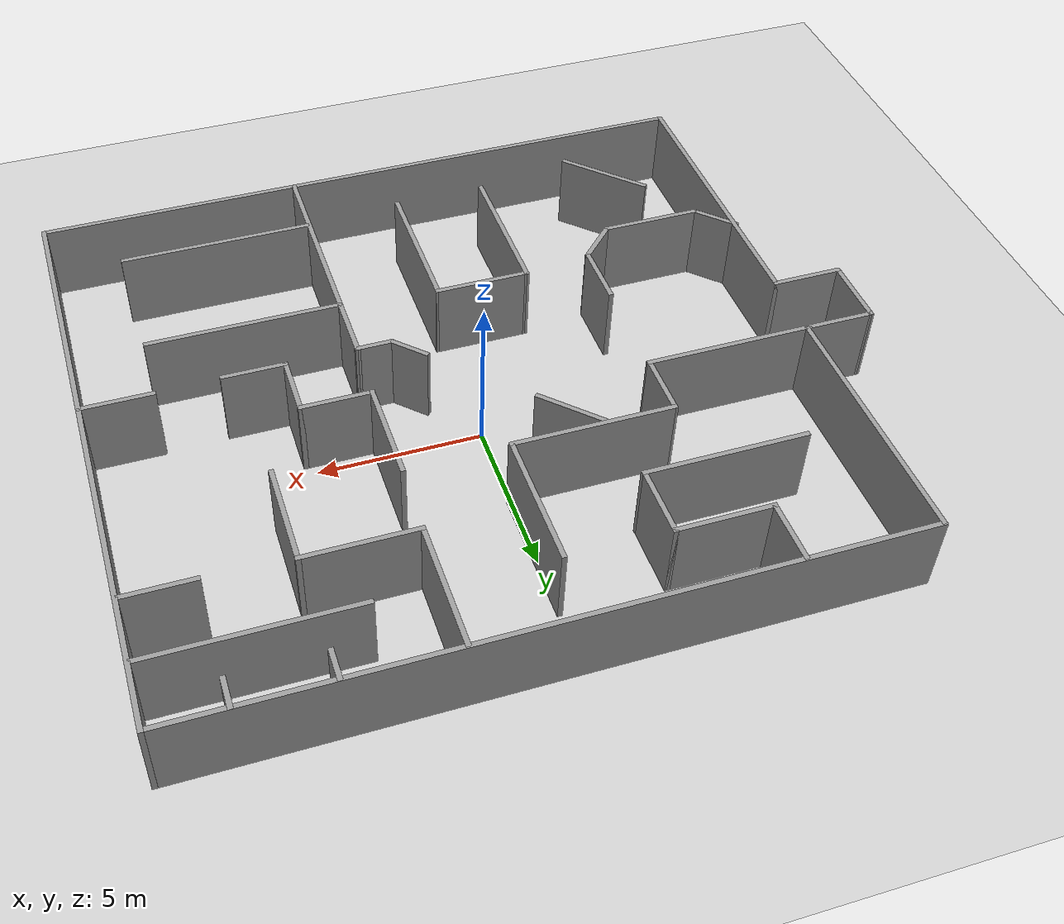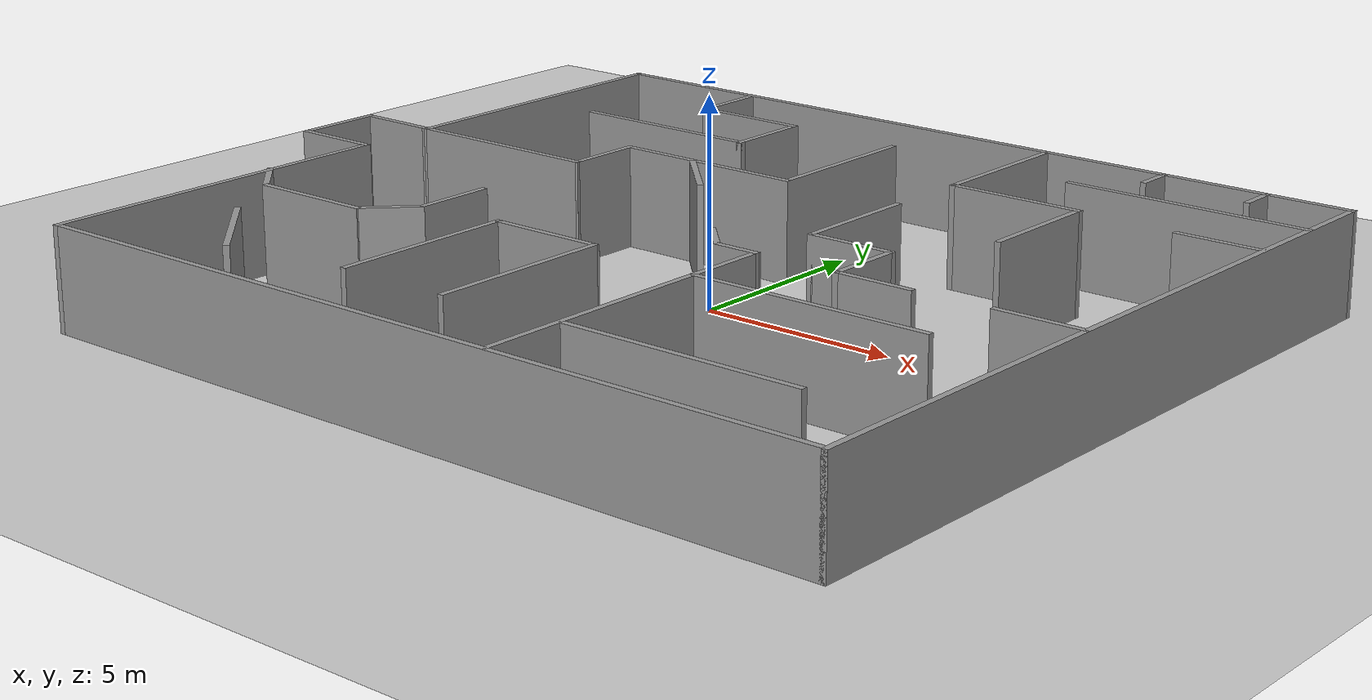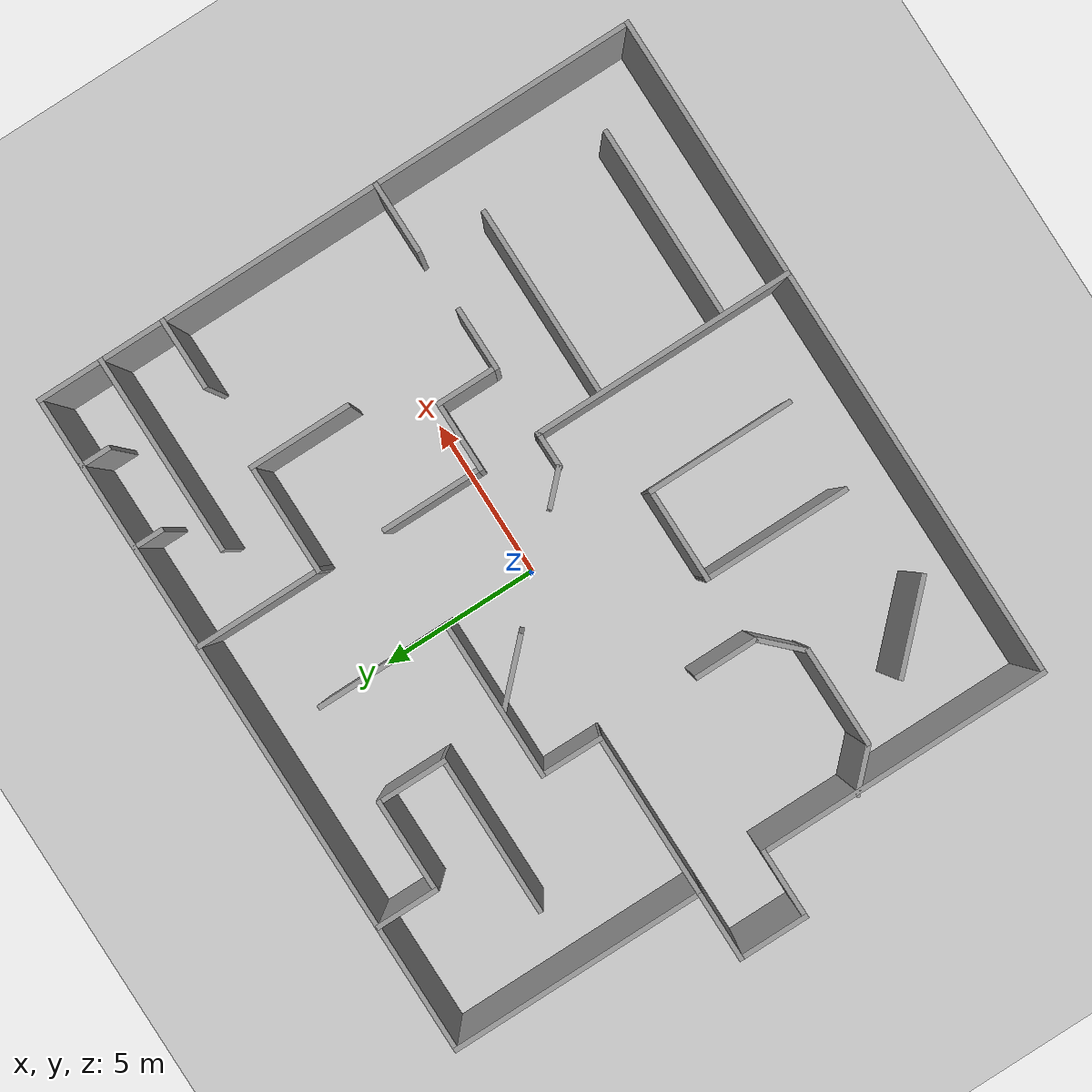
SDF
<sdf version="1.7">
 <world name="default">
  <model name="ground_plane">
   <static>1</static>
   <link name="link">
    <collision name="collision">
     <geometry><plane><normal>0 0 1</normal><size>100 100</size></plane></geometry>
     <surface>
      <contact><collide_bitmask>65535</collide_bitmask></contact>
      <friction><ode><mu>100</mu><mu2>50</mu2></ode></friction>
     </surface>
    </collision>
    <visual name="visual">
     <cast_shadows>0</cast_shadows>
     <geometry><plane><normal>0 0 1</normal><size>100 100</size></plane></geometry>
     <material>
      <script><uri>file://media/materials/scripts/gazebo.material</uri><name>Gazebo/Grey</name></script>
     </material>
    </visual>
   </link>
  </model>
  <model name="Maze_2">
   <pose>-0.343797 -0.781152 -0 0 -0 0</pose>
   <link name="Wall_1">
    <collision name="Wall_1_Collision">
     <geometry><box><size>2.18537 0.15 2.5</size></box></geometry>
     <pose>0 0 1.25 0 -0 0</pose>
    </collision>
    <visual name="Wall_1_Visual">
     <pose>0 0 1.25 0 -0 0</pose>
     <geometry><box><size>2.18537 0.15 2.5</size></box></geometry>
     <material>
      <script><uri>file://media/materials/scripts/gazebo.material</uri><name>Gazebo/Grey</name></script>
      <ambient>1 1 1 1</ambient>
     </material>
     <meta><layer>0</layer></meta>
    </visual>
    <pose>-10.5822 1.64751 0 0 -0 3.13915</pose>
   </link>
   <link name="Wall_10">
    <collision name="Wall_10_Collision">
     <geometry><box><size>2.25 0.15 2.5</size></box></geometry>
     <pose>1 0 1.25 0 -0 0</pose>
    </collision>
    <visual name="Wall_10_Visual">
     <pose>1 0 1.25 0 -0 0</pose>
     <geometry><box><size>2.25 0.15 2.5</size></box></geometry>
     <material>
      <script><uri>file://media/materials/scripts/gazebo.material</uri><name>Gazebo/Grey</name></script>
      <ambient>1 1 1 1</ambient>
     </material>
     <meta><layer>0</layer></meta>
    </visual>
    <pose>-0.957564 1.99966 0 0 -0 2.35619</pose>
   </link>
   <link name="Wall_12">
    <collision name="Wall_12_Collision">
     <geometry><box><size>5 0.15 2.5</size></box></geometry>
     <pose>0 0 1.25 0 -0 0</pose>
    </collision>
    <visual name="Wall_12_Visual">
     <pose>0 0 1.25 0 -0 0</pose>
     <geometry><box><size>5 0.15 2.5</size></box></geometry>
     <material>
      <script><uri>file://media/materials/scripts/gazebo.material</uri><name>Gazebo/Grey</name></script>
      <ambient>1 1 1 1</ambient>
     </material>
     <meta><layer>0</layer></meta>
    </visual>
    <pose>-2.02915 3.51249 0 0 -0 0</pose>
   </link>
   <link name="Wall_14">
    <collision name="Wall_14_Collision">
     <geometry><box><size>2.01749 0.15 2.5</size></box></geometry>
     <pose>0 0 1.25 0 -0 0</pose>
    </collision>
    <visual name="Wall_14_Visual">
     <pose>0 0 1.25 0 -0 0</pose>
     <geometry><box><size>2.01749 0.15 2.5</size></box></geometry>
     <material>
      <script><uri>file://media/materials/scripts/gazebo.material</uri><name>Gazebo/Grey</name></script>
      <ambient>1 1 1 1</ambient>
     </material>
     <meta><layer>0</layer></meta>
    </visual>
    <pose>-4.45934 2.57876 0 0 -0 -1.57636</pose>
   </link>
   <link name="Wall_18">
    <collision name="Wall_18_Collision">
     <geometry><box><size>5.25 0.15 2.5</size></box></geometry>
     <pose>0 0 1.25 0 -0 0</pose>
    </collision>
    <visual name="Wall_18_Visual">
     <pose>0 0 1.25 0 -0 0</pose>
     <geometry><box><size>5.25 0.15 2.5</size></box></geometry>
     <material>
      <script><uri>file://media/materials/scripts/gazebo.material</uri><name>Gazebo/Grey</name></script>
      <ambient>1 1 1 1</ambient>
     </material>
     <meta><layer>0</layer></meta>
    </visual>
    <pose>-7.01454 1.64503 0 0 -0 3.14159</pose>
   </link>
   <link name="Wall_2">
    <collision name="Wall_2_Collision">
     <geometry><box><size>2.25 0.15 2.5</size></box></geometry>
     <pose>0 0 1.25 0 -0 0</pose>
    </collision>
    <visual name="Wall_2_Visual">
     <pose>0 0 1.25 0 -0 0</pose>
     <geometry><box><size>2.25 0.15 2.5</size></box></geometry>
     <material>
      <script><uri>file://media/materials/scripts/gazebo.material</uri><name>Gazebo/Grey</name></script>
      <ambient>1 1 1 1</ambient>
     </material>
     <meta><layer>0</layer></meta>
    </visual>
    <pose>-11.5999 0.6 0 0 -0 -1.5708</pose>
   </link>
   <link name="Wall_20">
    <collision name="Wall_20_Collision">
     <geometry><box><size>8 0.15 2.5</size></box></geometry>
     <pose>0 0 1.25 0 -0 0</pose>
    </collision>
    <visual name="Wall_20_Visual">
     <pose>0 0 1.25 0 -0 0</pose>
     <geometry><box><size>8 0.15 2.5</size></box></geometry>
     <material>
      <script><uri>file://media/materials/scripts/gazebo.material</uri><name>Gazebo/Grey</name></script>
      <ambient>1 1 1 1</ambient>
     </material>
     <meta><layer>0</layer></meta>
    </visual>
    <pose>-9.49991 5.625 0 0 -0 -1.5708</pose>
   </link>
   <link name="Wall_22">
    <collision name="Wall_22_Collision">
     <geometry><box><size>1.25 0.15 2.5</size></box></geometry>
     <pose>0 0 1.25 0 -0 0</pose>
    </collision>
    <visual name="Wall_22_Visual">
     <pose>0 0 1.25 0 -0 0</pose>
     <geometry><box><size>1.25 0.15 2.5</size></box></geometry>
     <material>
      <script><uri>file://media/materials/scripts/gazebo.material</uri><name>Gazebo/Grey</name></script>
      <ambient>1 1 1 1</ambient>
     </material>
     <meta><layer>0</layer></meta>
    </visual>
    <pose>1.99675 -1.01284 0 0 -0 -0.785398</pose>
   </link>
   <link name="Wall_24">
    <collision name="Wall_24_Collision">
     <geometry><box><size>1.19529 0.15 2.5</size></box></geometry>
     <pose>0 0 1.25 0 -0 0</pose>
    </collision>
    <visual name="Wall_24_Visual">
     <pose>0 0 1.25 0 -0 0</pose>
     <geometry><box><size>1.19529 0.15 2.5</size></box></geometry>
     <material>
      <script><uri>file://media/materials/scripts/gazebo.material</uri><name>Gazebo/Grey</name></script>
      <ambient>1 1 1 1</ambient>
     </material>
     <meta><layer>0</layer></meta>
    </visual>
    <pose>2.94977 -1.43978 0 0 -0 -3.13794</pose>
   </link>
   <link name="Wall_26">
    <collision name="Wall_26_Collision">
     <geometry><box><size>8.25 0.15 2.5</size></box></geometry>
     <pose>0 0 1.25 0 -0 0</pose>
    </collision>
    <visual name="Wall_26_Visual">
     <pose>0 0 1.25 0 -0 0</pose>
     <geometry><box><size>8.25 0.15 2.5</size></box></geometry>
     <material>
      <script><uri>file://media/materials/scripts/gazebo.material</uri><name>Gazebo/Grey</name></script>
      <ambient>1 1 1 1</ambient>
     </material>
     <meta><layer>0</layer></meta>
    </visual>
    <pose>3.47228 -5.48787 0 0 -0 -1.5708</pose>
   </link>
   <link name="Wall_28">
    <collision name="Wall_28_Collision">
     <geometry><box><size>6 0.15 2.5</size></box></geometry>
     <pose>0 0 1.25 0 -0 0</pose>
    </collision>
    <visual name="Wall_28_Visual">
     <pose>0 0 1.25 0 -0 0</pose>
     <geometry><box><size>6 0.15 2.5</size></box></geometry>
     <material>
      <script><uri>file://media/materials/scripts/gazebo.material</uri><name>Gazebo/Grey</name></script>
      <ambient>1 1 1 1</ambient>
     </material>
     <meta><layer>0</layer></meta>
    </visual>
    <pose>6.42548 -3.4608 0 0 -0 0</pose>
   </link>
   <link name="Wall_3">
    <collision name="Wall_3_Collision">
     <geometry><box><size>2.25 0.15 2.5</size></box></geometry>
     <pose>0 0 1.25 0 -0 0</pose>
    </collision>
    <visual name="Wall_3_Visual">
     <pose>0 0 1.25 0 -0 0</pose>
     <geometry><box><size>2.25 0.15 2.5</size></box></geometry>
     <material>
      <script><uri>file://media/materials/scripts/gazebo.material</uri><name>Gazebo/Grey</name></script>
      <ambient>1 1 1 1</ambient>
     </material>
     <meta><layer>0</layer></meta>
    </visual>
    <pose>-10.5499 -0.45 0 0 -0 0</pose>
   </link>
   <link name="Wall_30">
    <collision name="Wall_30_Collision">
     <geometry><box><size>6 0.15 2.5</size></box></geometry>
     <pose>0 0 1.25 0 -0 0</pose>
    </collision>
    <visual name="Wall_30_Visual">
     <pose>0 0 1.25 0 -0 0</pose>
     <geometry><box><size>6 0.15 2.5</size></box></geometry>
     <material>
      <script><uri>file://media/materials/scripts/gazebo.material</uri><name>Gazebo/Grey</name></script>
      <ambient>1 1 1 1</ambient>
     </material>
     <meta><layer>0</layer></meta>
    </visual>
    <pose>6.47548 -7.4508 0 0 -0 0</pose>
   </link>
   <link name="Wall_32">
    <collision name="Wall_32_Collision">
     <geometry><box><size>4.64174 0.15 2.5</size></box></geometry>
     <pose>0 0 1.25 0 -0 0</pose>
    </collision>
    <visual name="Wall_32_Visual">
     <pose>0 0 1.25 0 -0 0</pose>
     <geometry><box><size>4.64174 0.15 2.5</size></box></geometry>
     <material>
      <script><uri>file://media/materials/scripts/gazebo.material</uri><name>Gazebo/Grey</name></script>
      <ambient>1 1 1 1</ambient>
     </material>
     <meta><layer>0</layer></meta>
    </visual>
    <pose>0.48137 -5.42485 0 0 -0 -1.56974</pose>
   </link>
   <link name="Wall_34">
    <collision name="Wall_34_Collision">
     <geometry><box><size>3 0.15 2.5</size></box></geometry>
     <pose>0 0 1.25 0 -0 0</pose>
    </collision>
    <visual name="Wall_34_Visual">
     <pose>0 0 1.25 0 -0 0</pose>
     <geometry><box><size>3 0.15 2.5</size></box></geometry>
     <material>
      <script><uri>file://media/materials/scripts/gazebo.material</uri><name>Gazebo/Grey</name></script>
      <ambient>1 1 1 1</ambient>
     </material>
     <meta><layer>0</layer></meta>
    </visual>
    <pose>-0.946011 -3.17898 0 0 -0 3.14159</pose>
   </link>
   <link name="Wall_36">
    <collision name="Wall_36_Collision">
     <geometry><box><size>4.64174 0.15 2.5</size></box></geometry>
     <pose>0 0 1.25 0 -0 0</pose>
    </collision>
    <visual name="Wall_36_Visual">
     <pose>0 0 1.25 0 -0 0</pose>
     <geometry><box><size>4.64174 0.15 2.5</size></box></geometry>
     <material>
      <script><uri>file://media/materials/scripts/gazebo.material</uri><name>Gazebo/Grey</name></script>
      <ambient>1 1 1 1</ambient>
     </material>
     <meta><layer>0</layer></meta>
    </visual>
    <pose>-2.36863 -5.42485 0 0 -0 -1.56974</pose>
   </link>
   <link name="Wall_38">
    <collision name="Wall_38_Collision">
     <geometry><box><size>4.25 0.15 2.5</size></box></geometry>
     <pose>0 0 1.25 0 -0 0</pose>
    </collision>
    <visual name="Wall_38_Visual">
     <pose>0 0 1.25 0 -0 0</pose>
     <geometry><box><size>4.25 0.15 2.5</size></box></geometry>
     <material>
      <script><uri>file://media/materials/scripts/gazebo.material</uri><name>Gazebo/Grey</name></script>
      <ambient>1 1 1 1</ambient>
     </material>
     <meta><layer>0</layer></meta>
    </visual>
    <pose>0.395855 5.56249 0 0 -0 1.5708</pose>
   </link>
   <link name="Wall_4">
    <collision name="Wall_4_Collision">
     <geometry><box><size>9.25 0.15 2.5</size></box></geometry>
     <pose>0 0 1.25 0 -0 0</pose>
    </collision>
    <visual name="Wall_4_Visual">
     <pose>0 0 1.25 0 -0 0</pose>
     <geometry><box><size>9.25 0.15 2.5</size></box></geometry>
     <material>
      <script><uri>file://media/materials/scripts/gazebo.material</uri><name>Gazebo/Grey</name></script>
      <ambient>1 1 1 1</ambient>
     </material>
     <meta><layer>0</layer></meta>
    </visual>
    <pose>-9.49991 -5 0 0 -0 -1.5708</pose>
   </link>
   <link name="Wall_43">
    <collision name="Wall_43_Collision">
     <geometry><box><size>1.5 0.15 2.5</size></box></geometry>
     <pose>0 0 1.25 0 -0 0</pose>
    </collision>
    <visual name="Wall_43_Visual">
     <pose>0 0 1.25 0 -0 0</pose>
     <geometry><box><size>1.5 0.15 2.5</size></box></geometry>
     <material>
      <script><uri>file://media/materials/scripts/gazebo.material</uri><name>Gazebo/Grey</name></script>
      <ambient>1 1 1 1</ambient>
     </material>
     <meta><layer>0</layer></meta>
    </visual>
    <pose>-4.98733 -3.9113 0 0 -0 0.785398</pose>
   </link>
   <link name="Wall_45">
    <collision name="Wall_45_Collision">
     <geometry><box><size>3.15541 0.15 2.5</size></box></geometry>
     <pose>0 0 1.25 0 -0 0</pose>
    </collision>
    <visual name="Wall_45_Visual">
     <pose>0 0 1.25 0 -0 0</pose>
     <geometry><box><size>3.15541 0.15 2.5</size></box></geometry>
     <material>
      <script><uri>file://media/materials/scripts/gazebo.material</uri><name>Gazebo/Grey</name></script>
      <ambient>1 1 1 1</ambient>
     </material>
     <meta><layer>0</layer></meta>
    </visual>
    <pose>-7.02192 -4.4463 0 0 -0 -3.14006</pose>
   </link>
   <link name="Wall_47">
    <collision name="Wall_47_Collision">
     <geometry><box><size>1.5 0.15 2.5</size></box></geometry>
     <pose>0 0 1.25 0 -0 0</pose>
    </collision>
    <visual name="Wall_47_Visual">
     <pose>0 0 1.25 0 -0 0</pose>
     <geometry><box><size>1.5 0.15 2.5</size></box></geometry>
     <material>
      <script><uri>file://media/materials/scripts/gazebo.material</uri><name>Gazebo/Grey</name></script>
      <ambient>1 1 1 1</ambient>
     </material>
     <meta><layer>0</layer></meta>
    </visual>
    <pose>-9.0687 -3.93452 0 0 -0 -0.785398</pose>
   </link>
   <link name="Wall_49">
    <collision name="Wall_49_Collision">
     <geometry><box><size>2 0.15 2.5</size></box></geometry>
     <pose>0 0 1.25 0 -0 0</pose>
    </collision>
    <visual name="Wall_49_Visual">
     <pose>0 0 1.25 0 -0 0</pose>
     <geometry><box><size>2 0.15 2.5</size></box></geometry>
     <material>
      <script><uri>file://media/materials/scripts/gazebo.material</uri><name>Gazebo/Grey</name></script>
      <ambient>1 1 1 1</ambient>
     </material>
     <meta><layer>0</layer></meta>
    </visual>
    <pose>-4.48721 -2.43429 0 0 -0 -1.5708</pose>
   </link>
   <link name="Wall_5">
    <collision name="Wall_5_Collision">
     <geometry><box><size>21.25 0.15 2.5</size></box></geometry>
     <pose>0 0 1.25 0 -0 0</pose>
    </collision>
    <visual name="Wall_5_Visual">
     <pose>0 0 1.25 0 -0 0</pose>
     <geometry><box><size>21.25 0.15 2.5</size></box></geometry>
     <material>
      <script><uri>file://media/materials/scripts/gazebo.material</uri><name>Gazebo/Grey</name></script>
      <ambient>1 1 1 1</ambient>
     </material>
     <meta><layer>0</layer></meta>
    </visual>
    <pose>1.05009 -9.55 0 0 -0 0</pose>
   </link>
   <link name="Wall_51">
    <collision name="Wall_51_Collision">
     <geometry><box><size>2.25 0.15 2.5</size></box></geometry>
     <pose>0 0 1.25 0 -0 0</pose>
    </collision>
    <visual name="Wall_51_Visual">
     <pose>0 0 1.25 0 -0 0</pose>
     <geometry><box><size>2.25 0.15 2.5</size></box></geometry>
     <material>
      <script><uri>file://media/materials/scripts/gazebo.material</uri><name>Gazebo/Grey</name></script>
      <ambient>1 1 1 1</ambient>
     </material>
     <meta><layer>0</layer></meta>
    </visual>
    <pose>10.5314 -1.37081 0 0 -0 3.14159</pose>
   </link>
   <link name="Wall_53">
    <collision name="Wall_53_Collision">
     <geometry><box><size>2 0.15 2.5</size></box></geometry>
     <pose>0 0 1.25 0 -0 0</pose>
    </collision>
    <visual name="Wall_53_Visual">
     <pose>0 0 1.25 0 -0 0</pose>
     <geometry><box><size>2 0.15 2.5</size></box></geometry>
     <material>
      <script><uri>file://media/materials/scripts/gazebo.material</uri><name>Gazebo/Grey</name></script>
      <ambient>1 1 1 1</ambient>
     </material>
     <meta><layer>0</layer></meta>
    </visual>
    <pose>6.55008 -1.43164 0 0 -0 3.14159</pose>
   </link>
   <link name="Wall_54">
    <collision name="Wall_54_Collision">
     <geometry><box><size>2 0.15 2.5</size></box></geometry>
     <pose>0 0 1.25 0 -0 0</pose>
    </collision>
    <visual name="Wall_54_Visual">
     <pose>0 0 1.25 0 -0 0</pose>
     <geometry><box><size>2 0.15 2.5</size></box></geometry>
     <material>
      <script><uri>file://media/materials/scripts/gazebo.material</uri><name>Gazebo/Grey</name></script>
      <ambient>1 1 1 1</ambient>
     </material>
     <meta><layer>0</layer></meta>
    </visual>
    <pose>5.62508 -0.506641 0 0 -0 1.5708</pose>
   </link>
   <link name="Wall_56">
    <collision name="Wall_56_Collision">
     <geometry><box><size>2.25 0.15 2.5</size></box></geometry>
     <pose>0 0 1.25 0 -0 0</pose>
    </collision>
    <visual name="Wall_56_Visual">
     <pose>0 0 1.25 0 -0 0</pose>
     <geometry><box><size>2.25 0.15 2.5</size></box></geometry>
     <material>
      <script><uri>file://media/materials/scripts/gazebo.material</uri><name>Gazebo/Grey</name></script>
      <ambient>1 1 1 1</ambient>
     </material>
     <meta><layer>0</layer></meta>
    </visual>
    <pose>4.57508 0.418359 0 0 -0 3.14159</pose>
   </link>
   <link name="Wall_58">
    <collision name="Wall_58_Collision">
     <geometry><box><size>3.25 0.15 2.5</size></box></geometry>
     <pose>0 0 1.25 0 -0 0</pose>
    </collision>
    <visual name="Wall_58_Visual">
     <pose>0 0 1.25 0 -0 0</pose>
     <geometry><box><size>3.25 0.15 2.5</size></box></geometry>
     <material>
      <script><uri>file://media/materials/scripts/gazebo.material</uri><name>Gazebo/Grey</name></script>
      <ambient>1 1 1 1</ambient>
     </material>
     <meta><layer>0</layer></meta>
    </visual>
    <pose>3.52508 1.96836 0 0 -0 1.5708</pose>
   </link>
   <link name="Wall_60">
    <collision name="Wall_60_Collision">
     <geometry><box><size>3.25 0.15 2.5</size></box></geometry>
     <pose>0 0 1.25 0 -0 0</pose>
    </collision>
    <visual name="Wall_60_Visual">
     <pose>0 0 1.25 0 -0 0</pose>
     <geometry><box><size>3.25 0.15 2.5</size></box></geometry>
     <material>
      <script><uri>file://media/materials/scripts/gazebo.material</uri><name>Gazebo/Grey</name></script>
      <ambient>1 1 1 1</ambient>
     </material>
     <meta><layer>0</layer></meta>
    </visual>
    <pose>6.92938 4.10641 0 0 -0 1.5708</pose>
   </link>
   <link name="Wall_61">
    <collision name="Wall_61_Collision">
     <geometry><box><size>3.5 0.15 2.5</size></box></geometry>
     <pose>0 0 1.25 0 -0 0</pose>
    </collision>
    <visual name="Wall_61_Visual">
     <pose>0 0 1.25 0 -0 0</pose>
     <geometry><box><size>3.5 0.15 2.5</size></box></geometry>
     <material>
      <script><uri>file://media/materials/scripts/gazebo.material</uri><name>Gazebo/Grey</name></script>
      <ambient>1 1 1 1</ambient>
     </material>
     <meta><layer>0</layer></meta>
    </visual>
    <pose>5.25438 5.65641 0 0 -0 3.14159</pose>
   </link>
   <link name="Wall_62">
    <collision name="Wall_62_Collision">
     <geometry><box><size>4 0.15 2.5</size></box></geometry>
     <pose>0 0 1.25 0 -0 0</pose>
    </collision>
    <visual name="Wall_62_Visual">
     <pose>0 0 1.25 0 -0 0</pose>
     <geometry><box><size>4 0.15 2.5</size></box></geometry>
     <material>
      <script><uri>file://media/materials/scripts/gazebo.material</uri><name>Gazebo/Grey</name></script>
      <ambient>1 1 1 1</ambient>
     </material>
     <meta><layer>0</layer></meta>
    </visual>
    <pose>3.57938 7.58141 0 0 -0 1.5708</pose>
   </link>
   <link name="Wall_64">
    <collision name="Wall_64_Collision">
     <geometry><box><size>2.25 0.15 2.5</size></box></geometry>
     <pose>0 0 1.25 0 -0 0</pose>
    </collision>
    <visual name="Wall_64_Visual">
     <pose>0 0 1.25 0 -0 0</pose>
     <geometry><box><size>2.25 0.15 2.5</size></box></geometry>
     <material>
      <script><uri>file://media/materials/scripts/gazebo.material</uri><name>Gazebo/Grey</name></script>
      <ambient>1 1 1 1</ambient>
     </material>
     <meta><layer>0</layer></meta>
    </visual>
    <pose>10.5479 5.54788 0 0 -0 3.14159</pose>
   </link>
   <link name="Wall_66">
    <collision name="Wall_66_Collision">
     <geometry><box><size>6.25 0.15 2.5</size></box></geometry>
     <pose>0 0 1.25 0 -0 0</pose>
    </collision>
    <visual name="Wall_66_Visual">
     <pose>0 0 1.25 0 -0 0</pose>
     <geometry><box><size>6.25 0.15 2.5</size></box></geometry>
     <material>
      <script><uri>file://media/materials/scripts/gazebo.material</uri><name>Gazebo/Grey</name></script>
      <ambient>1 1 1 1</ambient>
     </material>
     <meta><layer>0</layer></meta>
    </visual>
    <pose>8.54789 7.5544 0 0 -0 3.14159</pose>
   </link>
   <link name="Wall_68">
    <collision name="Wall_68_Collision">
     <geometry><box><size>1 0.15 2.5</size></box></geometry>
     <pose>0 0 1.25 0 -0 0</pose>
    </collision>
    <visual name="Wall_68_Visual">
     <pose>0 0 1.25 0 -0 0</pose>
     <geometry><box><size>1 0.15 2.5</size></box></geometry>
     <material>
      <script><uri>file://media/materials/scripts/gazebo.material</uri><name>Gazebo/Grey</name></script>
      <ambient>1 1 1 1</ambient>
     </material>
     <meta><layer>0</layer></meta>
    </visual>
    <pose>6.80789 9.1094 0 0 -0 -1.5708</pose>
   </link>
   <link name="Wall_7">
    <collision name="Wall_7_Collision">
     <geometry><box><size>19.25 0.15 2.5</size></box></geometry>
     <pose>0 0 1.25 0 -0 0</pose>
    </collision>
    <visual name="Wall_7_Visual">
     <pose>0 0 1.25 0 -0 0</pose>
     <geometry><box><size>19.25 0.15 2.5</size></box></geometry>
     <material>
      <script><uri>file://media/materials/scripts/gazebo.material</uri><name>Gazebo/Grey</name></script>
      <ambient>1 1 1 1</ambient>
     </material>
     <meta><layer>0</layer></meta>
    </visual>
    <pose>11.6001 0 0 0 -0 1.5708</pose>
   </link>
   <link name="Wall_70">
    <collision name="Wall_70_Collision">
     <geometry><box><size>1 0.15 2.5</size></box></geometry>
     <pose>0 0 1.25 0 -0 0</pose>
    </collision>
    <visual name="Wall_70_Visual">
     <pose>0 0 1.25 0 -0 0</pose>
     <geometry><box><size>1 0.15 2.5</size></box></geometry>
     <material>
      <script><uri>file://media/materials/scripts/gazebo.material</uri><name>Gazebo/Grey</name></script>
      <ambient>1 1 1 1</ambient>
     </material>
     <meta><layer>0</layer></meta>
    </visual>
    <pose>9.47789 9.1194 0 0 -0 -1.5708</pose>
   </link>
   <link name="Wall_72">
    <collision name="Wall_72_Collision">
     <geometry><box><size>3 0.15 2.5</size></box></geometry>
     <pose>0 0 1.25 0 -0 0</pose>
    </collision>
    <visual name="Wall_72_Visual">
     <pose>0 0 1.25 0 -0 0</pose>
     <geometry><box><size>3 0.15 2.5</size></box></geometry>
     <material>
      <script><uri>file://media/materials/scripts/gazebo.material</uri><name>Gazebo/Grey</name></script>
      <ambient>1 1 1 1</ambient>
     </material>
     <meta><layer>0</layer></meta>
    </visual>
    <pose>-6.50601 -7.19418 0 0 -0 -0.785398</pose>
   </link>
   <link name="Wall_74">
    <collision name="Wall_74_Collision">
     <geometry><box><size>2 0.15 2.5</size></box></geometry>
     <pose>0 0 1.25 0 -0 0</pose>
    </collision>
    <visual name="Wall_74_Visual">
     <pose>0 0 1.25 0 -0 0</pose>
     <geometry><box><size>2 0.15 2.5</size></box></geometry>
     <material>
      <script><uri>file://media/materials/scripts/gazebo.material</uri><name>Gazebo/Grey</name></script>
      <ambient>1 1 1 1</ambient>
     </material>
     <meta><layer>0</layer></meta>
    </visual>
    <pose>-5.52961 8.60068 0 0 -0 -1.5708</pose>
   </link>
   <link name="Wall_75">
    <collision name="Wall_75_Collision">
     <geometry><box><size>3 0.15 2.5</size></box></geometry>
     <pose>0 0 1.25 0 -0 0</pose>
    </collision>
    <visual name="Wall_75_Visual">
     <pose>0 0 1.25 0 -0 0</pose>
     <geometry><box><size>3 0.15 2.5</size></box></geometry>
     <material>
      <script><uri>file://media/materials/scripts/gazebo.material</uri><name>Gazebo/Grey</name></script>
      <ambient>1 1 1 1</ambient>
     </material>
     <meta><layer>0</layer></meta>
    </visual>
    <pose>-4.10461 7.67568 0 0 -0 0</pose>
   </link>
   <link name="Wall_76">
    <collision name="Wall_76_Collision">
     <geometry><box><size>2.25 0.15 2.5</size></box></geometry>
     <pose>0 0 1.25 0 -0 0</pose>
    </collision>
    <visual name="Wall_76_Visual">
     <pose>0 0 1.25 0 -0 0</pose>
     <geometry><box><size>2.25 0.15 2.5</size></box></geometry>
     <material>
      <script><uri>file://media/materials/scripts/gazebo.material</uri><name>Gazebo/Grey</name></script>
      <ambient>1 1 1 1</ambient>
     </material>
     <meta><layer>0</layer></meta>
    </visual>
    <pose>-2.67961 6.62568 0 0 -0 -1.5708</pose>
   </link>
   <link name="Wall_77">
    <collision name="Wall_77_Collision">
     <geometry><box><size>5 0.15 2.5</size></box></geometry>
     <pose>0 0 1.25 0 -0 0</pose>
    </collision>
    <visual name="Wall_77_Visual">
     <pose>0 0 1.25 0 -0 0</pose>
     <geometry><box><size>5 0.15 2.5</size></box></geometry>
     <material>
      <script><uri>file://media/materials/scripts/gazebo.material</uri><name>Gazebo/Grey</name></script>
      <ambient>1 1 1 1</ambient>
     </material>
     <meta><layer>0</layer></meta>
    </visual>
    <pose>-5.10461 5.57568 0 0 -0 3.14159</pose>
   </link>
   <link name="Wall_8">
    <collision name="Wall_8_Collision">
     <geometry><box><size>21.25 0.15 2.5</size></box></geometry>
     <pose>0 0 1.25 0 -0 0</pose>
    </collision>
    <visual name="Wall_8_Visual">
     <pose>0 0 1.25 0 -0 0</pose>
     <geometry><box><size>21.25 0.15 2.5</size></box></geometry>
     <material>
      <script><uri>file://media/materials/scripts/gazebo.material</uri><name>Gazebo/Grey</name></script>
      <ambient>1 1 1 1</ambient>
     </material>
     <meta><layer>0</layer></meta>
    </visual>
    <pose>1.05009 9.55 0 0 -0 3.14159</pose>
   </link>
   <static>1</static>
  </model>
 </world>
</sdf>
